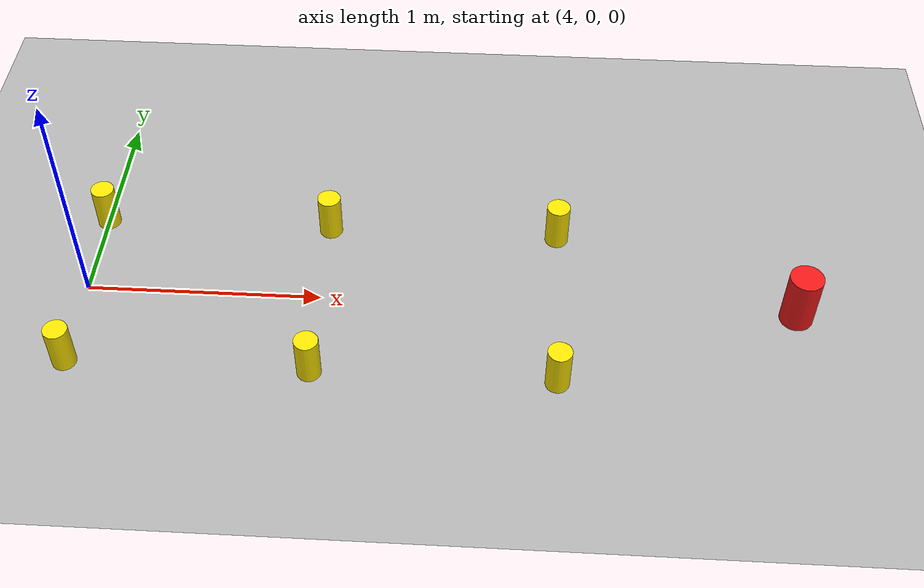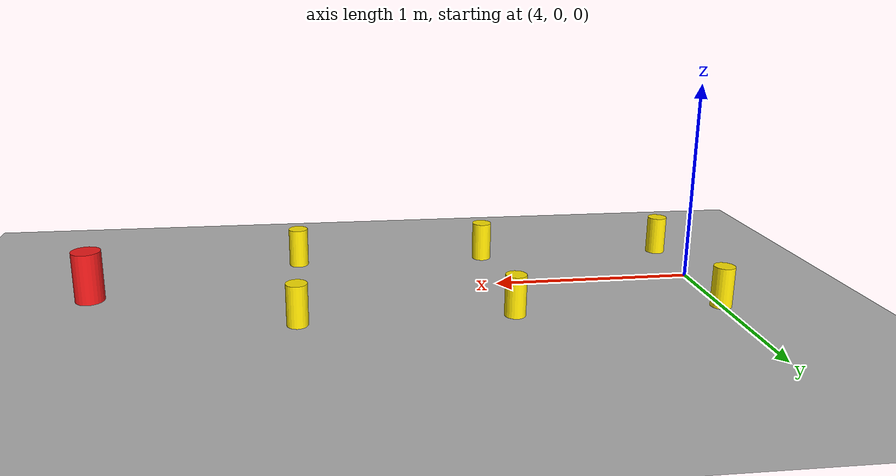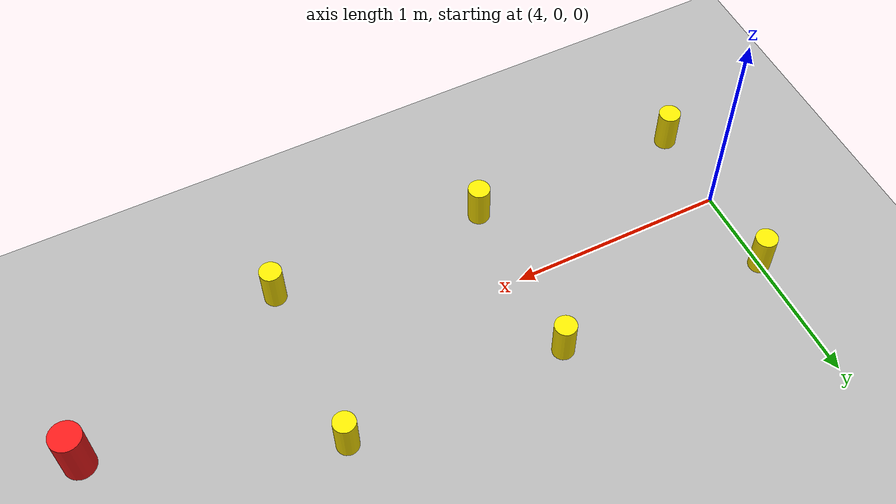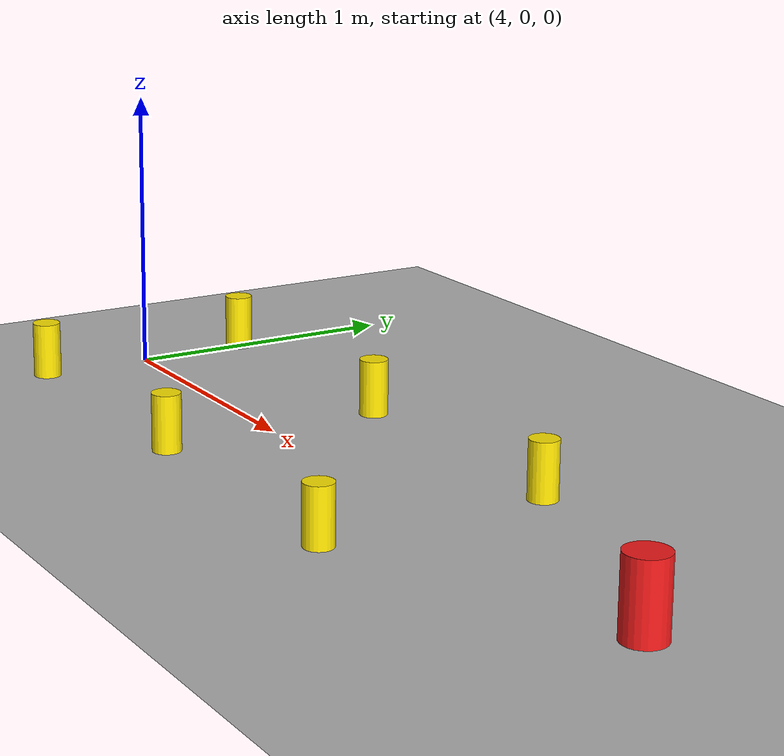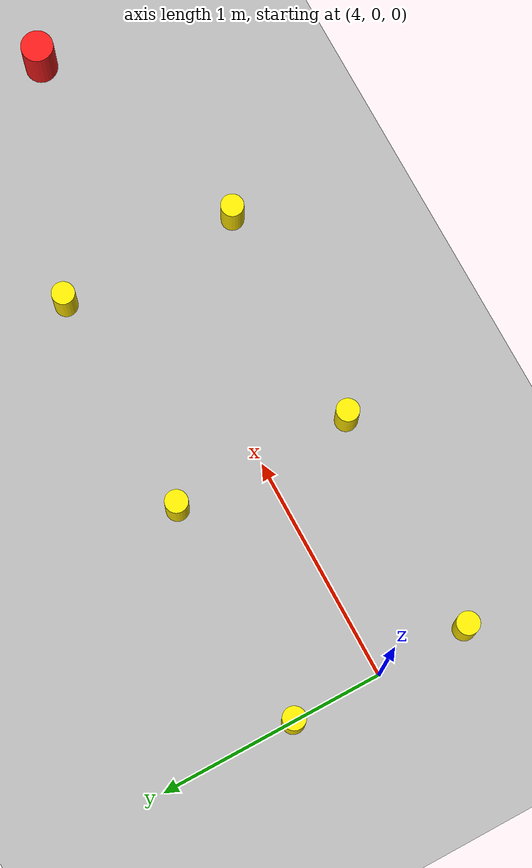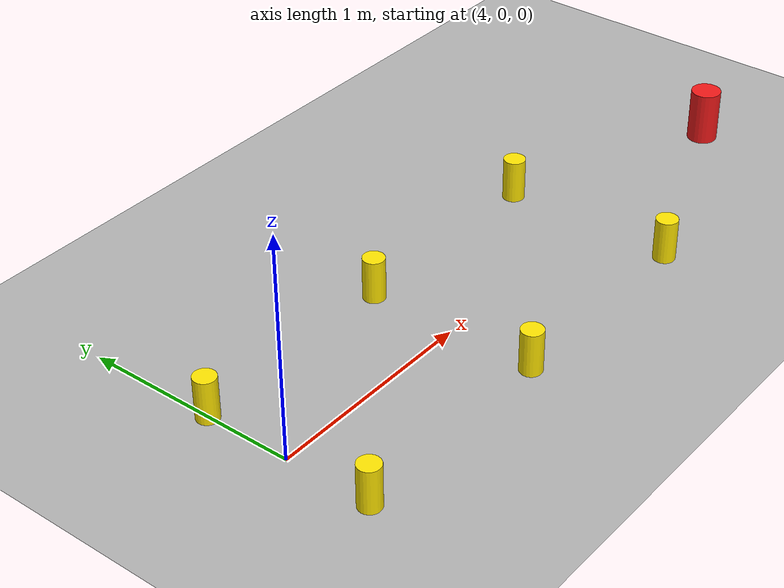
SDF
<?xml version="1.0"?>
<sdf version="1.7">
  <world name="cone_lane">

    <physics type="ode">
      <max_step_size>0.004</max_step_size>
      <real_time_factor>1.0</real_time_factor>
    </physics>

    <plugin filename="libignition-gazebo-physics-system.so"
            name="ignition::gazebo::systems::Physics"/>
    <plugin filename="libignition-gazebo-user-commands-system.so"
            name="ignition::gazebo::systems::UserCommands"/>
    <plugin filename="libignition-gazebo-scene-broadcaster-system.so"
            name="ignition::gazebo::systems::SceneBroadcaster"/>
    <plugin filename="libignition-gazebo-sensors-system.so"
            name="ignition::gazebo::systems::Sensors">
      <render_engine>ogre2</render_engine>
    </plugin>
    <plugin filename="libignition-gazebo-imu-system.so"
            name="ignition::gazebo::systems::Imu"/>

    <!-- Scene-level ambient fill — prevents fully-black shadows -->
    <scene>
      <ambient>0.4 0.4 0.4 1</ambient>
      <background>0.25 0.25 0.25 1</background>
      <shadows>true</shadows>
    </scene>

    <!-- Directional sun -->
    <light type="directional" name="sun">
      <cast_shadows>true</cast_shadows>
      <pose>0 0 10 0 0 0</pose>
      <diffuse>0.9 0.9 0.9 1</diffuse>
      <specular>0.3 0.3 0.3 1</specular>
      <attenuation>
        <range>1000</range><constant>0.9</constant>
        <linear>0.01</linear><quadratic>0.001</quadratic>
      </attenuation>
      <direction>-0.5 0.1 -0.9</direction>
    </light>

    <!-- Ground plane — light concrete grey -->
    <model name="ground_plane">
      <static>true</static>
      <link name="link">
        <collision name="collision">
          <geometry><plane><normal>0 0 1</normal><size>100 100</size></plane></geometry>
          <surface><friction><ode><mu>1.0</mu></ode></friction></surface>
        </collision>
        <visual name="visual">
          <geometry><plane><normal>0 0 1</normal><size>100 100</size></plane></geometry>
          <material>
            <ambient>0.55 0.55 0.55 1</ambient>
            <diffuse>0.70 0.70 0.70 1</diffuse>
            <specular>0.05 0.05 0.05 1</specular>
          </material>
        </visual>
      </link>
    </model>

    <!-- Left yellow cone row (starts at x=4, clear of spawn at x=-3) -->
    <model name="cone_L1"><static>true</static><pose>4.0  0.4 0.1 0 0 0</pose>
      <link name="link">
        <visual name="v"><geometry><cylinder><radius>0.05</radius><length>0.2</length></cylinder></geometry>
          <material><ambient>0.9 0.8 0.0 1</ambient><diffuse>1.0 0.9 0.0 1</diffuse><specular>0.2 0.2 0.0 1</specular></material></visual>
        <collision name="c"><geometry><cylinder><radius>0.05</radius><length>0.2</length></cylinder></geometry></collision>
      </link></model>

    <model name="cone_L2"><static>true</static><pose>5.0  0.4 0.1 0 0 0</pose>
      <link name="link">
        <visual name="v"><geometry><cylinder><radius>0.05</radius><length>0.2</length></cylinder></geometry>
          <material><ambient>0.9 0.8 0.0 1</ambient><diffuse>1.0 0.9 0.0 1</diffuse><specular>0.2 0.2 0.0 1</specular></material></visual>
        <collision name="c"><geometry><cylinder><radius>0.05</radius><length>0.2</length></cylinder></geometry></collision>
      </link></model>

    <model name="cone_L3"><static>true</static><pose>6.0  0.4 0.1 0 0 0</pose>
      <link name="link">
        <visual name="v"><geometry><cylinder><radius>0.05</radius><length>0.2</length></cylinder></geometry>
          <material><ambient>0.9 0.8 0.0 1</ambient><diffuse>1.0 0.9 0.0 1</diffuse><specular>0.2 0.2 0.0 1</specular></material></visual>
        <collision name="c"><geometry><cylinder><radius>0.05</radius><length>0.2</length></cylinder></geometry></collision>
      </link></model>

    <!-- Right yellow cone row -->
    <model name="cone_R1"><static>true</static><pose>4.0 -0.4 0.1 0 0 0</pose>
      <link name="link">
        <visual name="v"><geometry><cylinder><radius>0.05</radius><length>0.2</length></cylinder></geometry>
          <material><ambient>0.9 0.8 0.0 1</ambient><diffuse>1.0 0.9 0.0 1</diffuse><specular>0.2 0.2 0.0 1</specular></material></visual>
        <collision name="c"><geometry><cylinder><radius>0.05</radius><length>0.2</length></cylinder></geometry></collision>
      </link></model>

    <model name="cone_R2"><static>true</static><pose>5.0 -0.4 0.1 0 0 0</pose>
      <link name="link">
        <visual name="v"><geometry><cylinder><radius>0.05</radius><length>0.2</length></cylinder></geometry>
          <material><ambient>0.9 0.8 0.0 1</ambient><diffuse>1.0 0.9 0.0 1</diffuse><specular>0.2 0.2 0.0 1</specular></material></visual>
        <collision name="c"><geometry><cylinder><radius>0.05</radius><length>0.2</length></cylinder></geometry></collision>
      </link></model>

    <model name="cone_R3"><static>true</static><pose>6.0 -0.4 0.1 0 0 0</pose>
      <link name="link">
        <visual name="v"><geometry><cylinder><radius>0.05</radius><length>0.2</length></cylinder></geometry>
          <material><ambient>0.9 0.8 0.0 1</ambient><diffuse>1.0 0.9 0.0 1</diffuse><specular>0.2 0.2 0.0 1</specular></material></visual>
        <collision name="c"><geometry><cylinder><radius>0.05</radius><length>0.2</length></cylinder></geometry></collision>
      </link></model>

    <!-- Red goal cone -->
    <model name="cone_goal"><static>true</static><pose>7.0 0 0.125 0 0 0</pose>
      <link name="link">
        <visual name="v"><geometry><cylinder><radius>0.07</radius><length>0.25</length></cylinder></geometry>
          <material><ambient>0.8 0.05 0.05 1</ambient><diffuse>0.95 0.1 0.1 1</diffuse><specular>0.3 0.05 0.05 1</specular></material></visual>
        <collision name="c"><geometry><cylinder><radius>0.07</radius><length>0.25</length></cylinder></geometry></collision>
      </link></model>

  </world>
</sdf>
